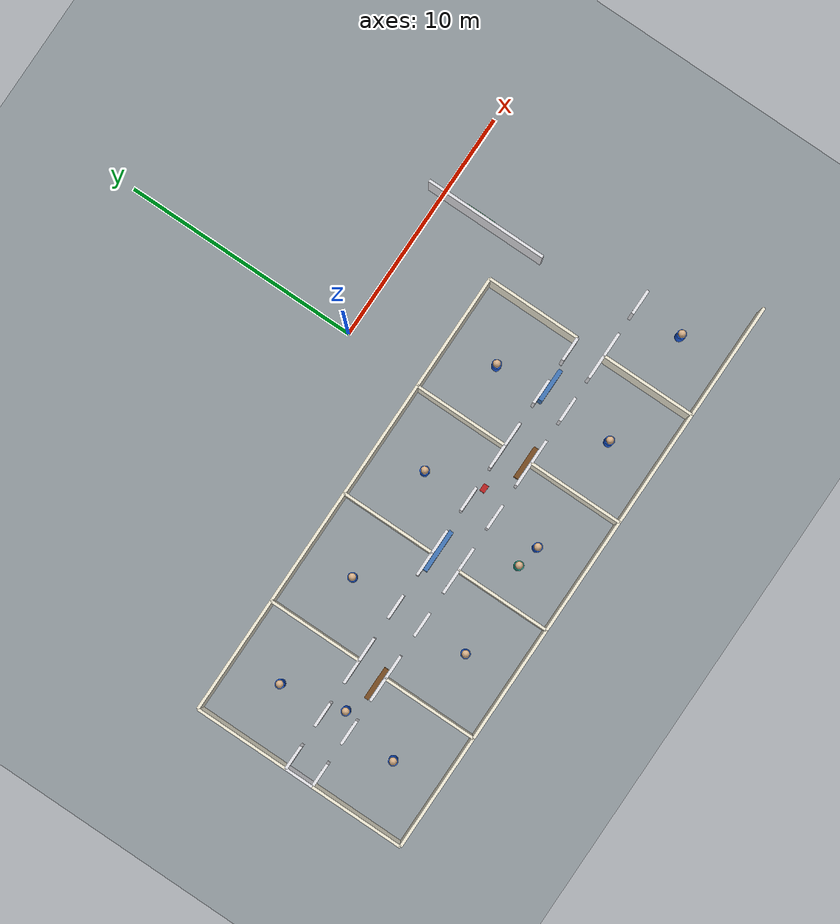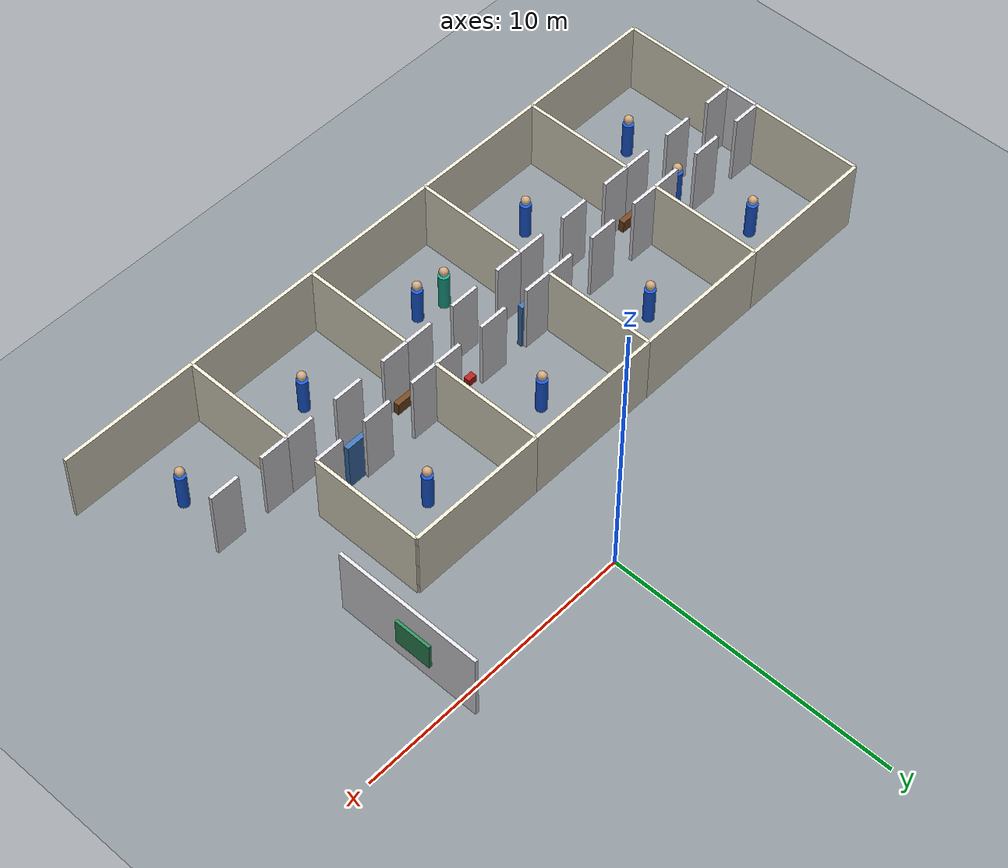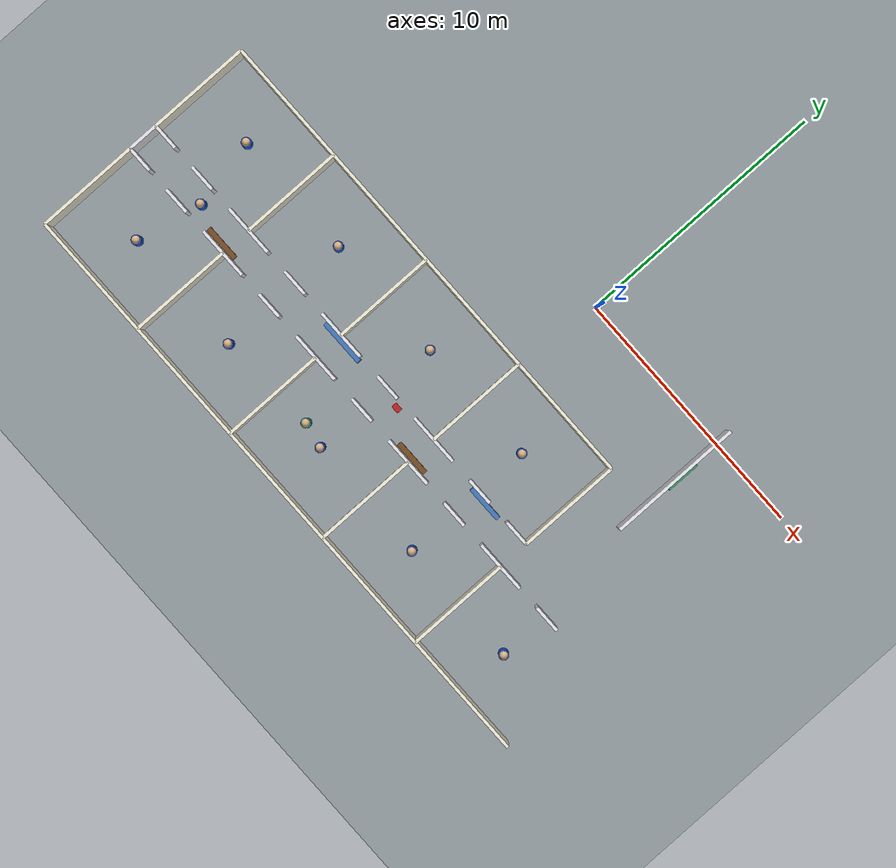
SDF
<sdf version="1.9">
 <world name="school_arena">
  <model name="ground">
   <static>true</static>
   <link name="link">
    <collision name="collision">
     <geometry><plane><normal>0 0 1</normal><size>80 80</size></plane></geometry>
    </collision>
    <visual name="visual">
     <geometry><plane><normal>0 0 1</normal><size>80 80</size></plane></geometry>
     <material><ambient>0.55 0.58 0.60 1</ambient><diffuse>0.55 0.58 0.60 1</diffuse></material>
    </visual>
   </link>
  </model>
  <model name="classroom_01_south">
   <static>true</static>
   <pose>-12.5500 -12.6000 1.3000 0 0 0</pose>
   <link name="link">
    <collision name="collision"><geometry><box><size>4.9000 0.1200 2.6000</size></box></geometry></collision>
    <visual name="visual">
     <geometry><box><size>4.9000 0.1200 2.6000</size></box></geometry>
     <material><ambient>0.92 0.90 0.82 1</ambient><diffuse>0.92 0.90 0.82 1</diffuse></material>
    </visual>
   </link>
  </model>
  <model name="classroom_01_west">
   <static>true</static>
   <pose>-15.0000 -10.6000 1.3000 0 0 0</pose>
   <link name="link">
    <collision name="collision"><geometry><box><size>0.1200 4.0000 2.6000</size></box></geometry></collision>
    <visual name="visual">
     <geometry><box><size>0.1200 4.0000 2.6000</size></box></geometry>
     <material><ambient>0.92 0.90 0.82 1</ambient><diffuse>0.92 0.90 0.82 1</diffuse></material>
    </visual>
   </link>
  </model>
  <model name="classroom_01_east">
   <static>true</static>
   <pose>-10.1000 -10.6000 1.3000 0 0 0</pose>
   <link name="link">
    <collision name="collision"><geometry><box><size>0.1200 4.0000 2.6000</size></box></geometry></collision>
    <visual name="visual">
     <geometry><box><size>0.1200 4.0000 2.6000</size></box></geometry>
     <material><ambient>0.92 0.90 0.82 1</ambient><diffuse>0.92 0.90 0.82 1</diffuse></material>
    </visual>
   </link>
  </model>
  <model name="classroom_01_front_0">
   <static>true</static>
   <pose>-14.4900 -8.6000 1.3000 0 0 0</pose>
   <link name="link">
    <collision name="collision"><geometry><box><size>1.0200 0.1200 2.6000</size></box></geometry></collision>
    <visual name="visual">
     <geometry><box><size>1.0200 0.1200 2.6000</size></box></geometry>
     <material><ambient>0.88 0.88 0.90 1</ambient><diffuse>0.88 0.88 0.90 1</diffuse></material>
    </visual>
   </link>
  </model>
  <model name="classroom_01_front_1">
   <static>true</static>
   <pose>-12.5500 -8.6000 1.3000 0 0 0</pose>
   <link name="link">
    <collision name="collision"><geometry><box><size>1.0600 0.1200 2.6000</size></box></geometry></collision>
    <visual name="visual">
     <geometry><box><size>1.0600 0.1200 2.6000</size></box></geometry>
     <material><ambient>0.88 0.88 0.90 1</ambient><diffuse>0.88 0.88 0.90 1</diffuse></material>
    </visual>
   </link>
  </model>
  <model name="classroom_01_front_2">
   <static>true</static>
   <pose>-10.6100 -8.6000 1.3000 0 0 0</pose>
   <link name="link">
    <collision name="collision"><geometry><box><size>1.0200 0.1200 2.6000</size></box></geometry></collision>
    <visual name="visual">
     <geometry><box><size>1.0200 0.1200 2.6000</size></box></geometry>
     <material><ambient>0.88 0.88 0.90 1</ambient><diffuse>0.88 0.88 0.90 1</diffuse></material>
    </visual>
   </link>
  </model>
  <model name="classroom_02_south">
   <static>true</static>
   <pose>-7.6500 -12.6000 1.3000 0 0 0</pose>
   <link name="link">
    <collision name="collision"><geometry><box><size>4.9000 0.1200 2.6000</size></box></geometry></collision>
    <visual name="visual">
     <geometry><box><size>4.9000 0.1200 2.6000</size></box></geometry>
     <material><ambient>0.92 0.90 0.82 1</ambient><diffuse>0.92 0.90 0.82 1</diffuse></material>
    </visual>
   </link>
  </model>
  <model name="classroom_02_west">
   <static>true</static>
   <pose>-10.1000 -10.6000 1.3000 0 0 0</pose>
   <link name="link">
    <collision name="collision"><geometry><box><size>0.1200 4.0000 2.6000</size></box></geometry></collision>
    <visual name="visual">
     <geometry><box><size>0.1200 4.0000 2.6000</size></box></geometry>
     <material><ambient>0.92 0.90 0.82 1</ambient><diffuse>0.92 0.90 0.82 1</diffuse></material>
    </visual>
   </link>
  </model>
  <model name="classroom_02_east">
   <static>true</static>
   <pose>-5.2000 -10.6000 1.3000 0 0 0</pose>
   <link name="link">
    <collision name="collision"><geometry><box><size>0.1200 4.0000 2.6000</size></box></geometry></collision>
    <visual name="visual">
     <geometry><box><size>0.1200 4.0000 2.6000</size></box></geometry>
     <material><ambient>0.92 0.90 0.82 1</ambient><diffuse>0.92 0.90 0.82 1</diffuse></material>
    </visual>
   </link>
  </model>
  <model name="classroom_02_front_0">
   <static>true</static>
   <pose>-9.5900 -8.6000 1.3000 0 0 0</pose>
   <link name="link">
    <collision name="collision"><geometry><box><size>1.0200 0.1200 2.6000</size></box></geometry></collision>
    <visual name="visual">
     <geometry><box><size>1.0200 0.1200 2.6000</size></box></geometry>
     <material><ambient>0.88 0.88 0.90 1</ambient><diffuse>0.88 0.88 0.90 1</diffuse></material>
    </visual>
   </link>
  </model>
  <model name="classroom_02_front_1">
   <static>true</static>
   <pose>-7.6500 -8.6000 1.3000 0 0 0</pose>
   <link name="link">
    <collision name="collision"><geometry><box><size>1.0600 0.1200 2.6000</size></box></geometry></collision>
    <visual name="visual">
     <geometry><box><size>1.0600 0.1200 2.6000</size></box></geometry>
     <material><ambient>0.88 0.88 0.90 1</ambient><diffuse>0.88 0.88 0.90 1</diffuse></material>
    </visual>
   </link>
  </model>
  <model name="classroom_02_front_2">
   <static>true</static>
   <pose>-5.7100 -8.6000 1.3000 0 0 0</pose>
   <link name="link">
    <collision name="collision"><geometry><box><size>1.0200 0.1200 2.6000</size></box></geometry></collision>
    <visual name="visual">
     <geometry><box><size>1.0200 0.1200 2.6000</size></box></geometry>
     <material><ambient>0.88 0.88 0.90 1</ambient><diffuse>0.88 0.88 0.90 1</diffuse></material>
    </visual>
   </link>
  </model>
  <model name="classroom_03_south">
   <static>true</static>
   <pose>-2.7500 -12.6000 1.3000 0 0 0</pose>
   <link name="link">
    <collision name="collision"><geometry><box><size>4.9000 0.1200 2.6000</size></box></geometry></collision>
    <visual name="visual">
     <geometry><box><size>4.9000 0.1200 2.6000</size></box></geometry>
     <material><ambient>0.92 0.90 0.82 1</ambient><diffuse>0.92 0.90 0.82 1</diffuse></material>
    </visual>
   </link>
  </model>
  <model name="classroom_03_west">
   <static>true</static>
   <pose>-5.2000 -10.6000 1.3000 0 0 0</pose>
   <link name="link">
    <collision name="collision"><geometry><box><size>0.1200 4.0000 2.6000</size></box></geometry></collision>
    <visual name="visual">
     <geometry><box><size>0.1200 4.0000 2.6000</size></box></geometry>
     <material><ambient>0.92 0.90 0.82 1</ambient><diffuse>0.92 0.90 0.82 1</diffuse></material>
    </visual>
   </link>
  </model>
  <model name="classroom_03_east">
   <static>true</static>
   <pose>-0.3000 -10.6000 1.3000 0 0 0</pose>
   <link name="link">
    <collision name="collision"><geometry><box><size>0.1200 4.0000 2.6000</size></box></geometry></collision>
    <visual name="visual">
     <geometry><box><size>0.1200 4.0000 2.6000</size></box></geometry>
     <material><ambient>0.92 0.90 0.82 1</ambient><diffuse>0.92 0.90 0.82 1</diffuse></material>
    </visual>
   </link>
  </model>
  <model name="classroom_03_front_0">
   <static>true</static>
   <pose>-4.6900 -8.6000 1.3000 0 0 0</pose>
   <link name="link">
    <collision name="collision"><geometry><box><size>1.0200 0.1200 2.6000</size></box></geometry></collision>
    <visual name="visual">
     <geometry><box><size>1.0200 0.1200 2.6000</size></box></geometry>
     <material><ambient>0.88 0.88 0.90 1</ambient><diffuse>0.88 0.88 0.90 1</diffuse></material>
    </visual>
   </link>
  </model>
  <model name="classroom_03_front_1">
   <static>true</static>
   <pose>-2.7500 -8.6000 1.3000 0 0 0</pose>
   <link name="link">
    <collision name="collision"><geometry><box><size>1.0600 0.1200 2.6000</size></box></geometry></collision>
    <visual name="visual">
     <geometry><box><size>1.0600 0.1200 2.6000</size></box></geometry>
     <material><ambient>0.88 0.88 0.90 1</ambient><diffuse>0.88 0.88 0.90 1</diffuse></material>
    </visual>
   </link>
  </model>
  <model name="classroom_03_front_2">
   <static>true</static>
   <pose>-0.8100 -8.6000 1.3000 0 0 0</pose>
   <link name="link">
    <collision name="collision"><geometry><box><size>1.0200 0.1200 2.6000</size></box></geometry></collision>
    <visual name="visual">
     <geometry><box><size>1.0200 0.1200 2.6000</size></box></geometry>
     <material><ambient>0.88 0.88 0.90 1</ambient><diffuse>0.88 0.88 0.90 1</diffuse></material>
    </visual>
   </link>
  </model>
  <model name="classroom_04_south">
   <static>true</static>
   <pose>2.1500 -12.6000 1.3000 0 0 0</pose>
   <link name="link">
    <collision name="collision"><geometry><box><size>4.9000 0.1200 2.6000</size></box></geometry></collision>
    <visual name="visual">
     <geometry><box><size>4.9000 0.1200 2.6000</size></box></geometry>
     <material><ambient>0.92 0.90 0.82 1</ambient><diffuse>0.92 0.90 0.82 1</diffuse></material>
    </visual>
   </link>
  </model>
  <model name="classroom_04_west">
   <static>true</static>
   <pose>-0.3000 -10.6000 1.3000 0 0 0</pose>
   <link name="link">
    <collision name="collision"><geometry><box><size>0.1200 4.0000 2.6000</size></box></geometry></collision>
    <visual name="visual">
     <geometry><box><size>0.1200 4.0000 2.6000</size></box></geometry>
     <material><ambient>0.92 0.90 0.82 1</ambient><diffuse>0.92 0.90 0.82 1</diffuse></material>
    </visual>
   </link>
  </model>
  <model name="classroom_04_east">
   <static>true</static>
   <pose>4.6000 -10.6000 1.3000 0 0 0</pose>
   <link name="link">
    <collision name="collision"><geometry><box><size>0.1200 4.0000 2.6000</size></box></geometry></collision>
    <visual name="visual">
     <geometry><box><size>0.1200 4.0000 2.6000</size></box></geometry>
     <material><ambient>0.92 0.90 0.82 1</ambient><diffuse>0.92 0.90 0.82 1</diffuse></material>
    </visual>
   </link>
  </model>
  <model name="classroom_04_front_0">
   <static>true</static>
   <pose>0.2100 -8.6000 1.3000 0 0 0</pose>
   <link name="link">
    <collision name="collision"><geometry><box><size>1.0200 0.1200 2.6000</size></box></geometry></collision>
    <visual name="visual">
     <geometry><box><size>1.0200 0.1200 2.6000</size></box></geometry>
     <material><ambient>0.88 0.88 0.90 1</ambient><diffuse>0.88 0.88 0.90 1</diffuse></material>
    </visual>
   </link>
  </model>
  <model name="classroom_04_front_1">
   <static>true</static>
   <pose>2.1500 -8.6000 1.3000 0 0 0</pose>
   <link name="link">
    <collision name="collision"><geometry><box><size>1.0600 0.1200 2.6000</size></box></geometry></collision>
    <visual name="visual">
     <geometry><box><size>1.0600 0.1200 2.6000</size></box></geometry>
     <material><ambient>0.88 0.88 0.90 1</ambient><diffuse>0.88 0.88 0.90 1</diffuse></material>
    </visual>
   </link>
  </model>
  <model name="classroom_04_front_2">
   <static>true</static>
   <pose>4.0900 -8.6000 1.3000 0 0 0</pose>
   <link name="link">
    <collision name="collision"><geometry><box><size>1.0200 0.1200 2.6000</size></box></geometry></collision>
    <visual name="visual">
     <geometry><box><size>1.0200 0.1200 2.6000</size></box></geometry>
     <material><ambient>0.88 0.88 0.90 1</ambient><diffuse>0.88 0.88 0.90 1</diffuse></material>
    </visual>
   </link>
  </model>
  <model name="classroom_05_south">
   <static>true</static>
   <pose>7.0500 -12.6000 1.3000 0 0 0</pose>
   <link name="link">
    <collision name="collision"><geometry><box><size>4.9000 0.1200 2.6000</size></box></geometry></collision>
    <visual name="visual">
     <geometry><box><size>4.9000 0.1200 2.6000</size></box></geometry>
     <material><ambient>0.92 0.90 0.82 1</ambient><diffuse>0.92 0.90 0.82 1</diffuse></material>
    </visual>
   </link>
  </model>
  <model name="classroom_05_west">
   <static>true</static>
   <pose>4.6000 -10.6000 1.3000 0 0 0</pose>
   <link name="link">
    <collision name="collision"><geometry><box><size>0.1200 4.0000 2.6000</size></box></geometry></collision>
    <visual name="visual">
     <geometry><box><size>0.1200 4.0000 2.6000</size></box></geometry>
     <material><ambient>0.92 0.90 0.82 1</ambient><diffuse>0.92 0.90 0.82 1</diffuse></material>
    </visual>
   </link>
  </model>
  <model name="classroom_05_front_0">
   <static>true</static>
   <pose>5.1100 -8.6000 1.3000 0 0 0</pose>
   <link name="link">
    <collision name="collision"><geometry><box><size>1.0200 0.1200 2.6000</size></box></geometry></collision>
    <visual name="visual">
     <geometry><box><size>1.0200 0.1200 2.6000</size></box></geometry>
     <material><ambient>0.88 0.88 0.90 1</ambient><diffuse>0.88 0.88 0.90 1</diffuse></material>
    </visual>
   </link>
  </model>
  <model name="classroom_05_front_1">
   <static>true</static>
   <pose>7.0500 -8.6000 1.3000 0 0 0</pose>
   <link name="link">
    <collision name="collision"><geometry><box><size>1.0600 0.1200 2.6000</size></box></geometry></collision>
    <visual name="visual">
     <geometry><box><size>1.0600 0.1200 2.6000</size></box></geometry>
     <material><ambient>0.88 0.88 0.90 1</ambient><diffuse>0.88 0.88 0.90 1</diffuse></material>
    </visual>
   </link>
  </model>
  <model name="classroom_07_north">
   <static>true</static>
   <pose>-12.5500 -3.4000 1.3000 0 0 0</pose>
   <link name="link">
    <collision name="collision"><geometry><box><size>4.9000 0.1200 2.6000</size></box></geometry></collision>
    <visual name="visual">
     <geometry><box><size>4.9000 0.1200 2.6000</size></box></geometry>
     <material><ambient>0.92 0.90 0.82 1</ambient><diffuse>0.92 0.90 0.82 1</diffuse></material>
    </visual>
   </link>
  </model>
  <model name="classroom_07_west">
   <static>true</static>
   <pose>-15.0000 -5.4000 1.3000 0 0 0</pose>
   <link name="link">
    <collision name="collision"><geometry><box><size>0.1200 4.0000 2.6000</size></box></geometry></collision>
    <visual name="visual">
     <geometry><box><size>0.1200 4.0000 2.6000</size></box></geometry>
     <material><ambient>0.92 0.90 0.82 1</ambient><diffuse>0.92 0.90 0.82 1</diffuse></material>
    </visual>
   </link>
  </model>
  <model name="classroom_07_east">
   <static>true</static>
   <pose>-10.1000 -5.4000 1.3000 0 0 0</pose>
   <link name="link">
    <collision name="collision"><geometry><box><size>0.1200 4.0000 2.6000</size></box></geometry></collision>
    <visual name="visual">
     <geometry><box><size>0.1200 4.0000 2.6000</size></box></geometry>
     <material><ambient>0.92 0.90 0.82 1</ambient><diffuse>0.92 0.90 0.82 1</diffuse></material>
    </visual>
   </link>
  </model>
  <model name="classroom_07_front_0">
   <static>true</static>
   <pose>-14.4900 -7.4000 1.3000 0 0 0</pose>
   <link name="link">
    <collision name="collision"><geometry><box><size>1.0200 0.1200 2.6000</size></box></geometry></collision>
    <visual name="visual">
     <geometry><box><size>1.0200 0.1200 2.6000</size></box></geometry>
     <material><ambient>0.88 0.88 0.90 1</ambient><diffuse>0.88 0.88 0.90 1</diffuse></material>
    </visual>
   </link>
  </model>
  <model name="classroom_07_front_1">
   <static>true</static>
   <pose>-12.5500 -7.4000 1.3000 0 0 0</pose>
   <link name="link">
    <collision name="collision"><geometry><box><size>1.0600 0.1200 2.6000</size></box></geometry></collision>
    <visual name="visual">
     <geometry><box><size>1.0600 0.1200 2.6000</size></box></geometry>
     <material><ambient>0.88 0.88 0.90 1</ambient><diffuse>0.88 0.88 0.90 1</diffuse></material>
    </visual>
   </link>
  </model>
  <model name="classroom_07_front_2">
   <static>true</static>
   <pose>-10.6100 -7.4000 1.3000 0 0 0</pose>
   <link name="link">
    <collision name="collision"><geometry><box><size>1.0200 0.1200 2.6000</size></box></geometry></collision>
    <visual name="visual">
     <geometry><box><size>1.0200 0.1200 2.6000</size></box></geometry>
     <material><ambient>0.88 0.88 0.90 1</ambient><diffuse>0.88 0.88 0.90 1</diffuse></material>
    </visual>
   </link>
  </model>
  <model name="classroom_08_north">
   <static>true</static>
   <pose>-7.6500 -3.4000 1.3000 0 0 0</pose>
   <link name="link">
    <collision name="collision"><geometry><box><size>4.9000 0.1200 2.6000</size></box></geometry></collision>
    <visual name="visual">
     <geometry><box><size>4.9000 0.1200 2.6000</size></box></geometry>
     <material><ambient>0.92 0.90 0.82 1</ambient><diffuse>0.92 0.90 0.82 1</diffuse></material>
    </visual>
   </link>
  </model>
  <model name="classroom_08_west">
   <static>true</static>
   <pose>-10.1000 -5.4000 1.3000 0 0 0</pose>
   <link name="link">
    <collision name="collision"><geometry><box><size>0.1200 4.0000 2.6000</size></box></geometry></collision>
    <visual name="visual">
     <geometry><box><size>0.1200 4.0000 2.6000</size></box></geometry>
     <material><ambient>0.92 0.90 0.82 1</ambient><diffuse>0.92 0.90 0.82 1</diffuse></material>
    </visual>
   </link>
  </model>
  <model name="classroom_08_east">
   <static>true</static>
   <pose>-5.2000 -5.4000 1.3000 0 0 0</pose>
   <link name="link">
    <collision name="collision"><geometry><box><size>0.1200 4.0000 2.6000</size></box></geometry></collision>
    <visual name="visual">
     <geometry><box><size>0.1200 4.0000 2.6000</size></box></geometry>
     <material><ambient>0.92 0.90 0.82 1</ambient><diffuse>0.92 0.90 0.82 1</diffuse></material>
    </visual>
   </link>
  </model>
  <model name="classroom_08_front_0">
   <static>true</static>
   <pose>-9.5900 -7.4000 1.3000 0 0 0</pose>
   <link name="link">
    <collision name="collision"><geometry><box><size>1.0200 0.1200 2.6000</size></box></geometry></collision>
    <visual name="visual">
     <geometry><box><size>1.0200 0.1200 2.6000</size></box></geometry>
     <material><ambient>0.88 0.88 0.90 1</ambient><diffuse>0.88 0.88 0.90 1</diffuse></material>
    </visual>
   </link>
  </model>
  <model name="classroom_08_front_1">
   <static>true</static>
   <pose>-7.6500 -7.4000 1.3000 0 0 0</pose>
   <link name="link">
    <collision name="collision"><geometry><box><size>1.0600 0.1200 2.6000</size></box></geometry></collision>
    <visual name="visual">
     <geometry><box><size>1.0600 0.1200 2.6000</size></box></geometry>
     <material><ambient>0.88 0.88 0.90 1</ambient><diffuse>0.88 0.88 0.90 1</diffuse></material>
    </visual>
   </link>
  </model>
  <model name="classroom_08_front_2">
   <static>true</static>
   <pose>-5.7100 -7.4000 1.3000 0 0 0</pose>
   <link name="link">
    <collision name="collision"><geometry><box><size>1.0200 0.1200 2.6000</size></box></geometry></collision>
    <visual name="visual">
     <geometry><box><size>1.0200 0.1200 2.6000</size></box></geometry>
     <material><ambient>0.88 0.88 0.90 1</ambient><diffuse>0.88 0.88 0.90 1</diffuse></material>
    </visual>
   </link>
  </model>
  <model name="classroom_09_north">
   <static>true</static>
   <pose>-2.7500 -3.4000 1.3000 0 0 0</pose>
   <link name="link">
    <collision name="collision"><geometry><box><size>4.9000 0.1200 2.6000</size></box></geometry></collision>
    <visual name="visual">
     <geometry><box><size>4.9000 0.1200 2.6000</size></box></geometry>
     <material><ambient>0.92 0.90 0.82 1</ambient><diffuse>0.92 0.90 0.82 1</diffuse></material>
    </visual>
   </link>
  </model>
  <model name="classroom_09_west">
   <static>true</static>
   <pose>-5.2000 -5.4000 1.3000 0 0 0</pose>
   <link name="link">
    <collision name="collision"><geometry><box><size>0.1200 4.0000 2.6000</size></box></geometry></collision>
    <visual name="visual">
     <geometry><box><size>0.1200 4.0000 2.6000</size></box></geometry>
     <material><ambient>0.92 0.90 0.82 1</ambient><diffuse>0.92 0.90 0.82 1</diffuse></material>
    </visual>
   </link>
  </model>
  <model name="classroom_09_east">
   <static>true</static>
   <pose>-0.3000 -5.4000 1.3000 0 0 0</pose>
   <link name="link">
    <collision name="collision"><geometry><box><size>0.1200 4.0000 2.6000</size></box></geometry></collision>
    <visual name="visual">
     <geometry><box><size>0.1200 4.0000 2.6000</size></box></geometry>
     <material><ambient>0.92 0.90 0.82 1</ambient><diffuse>0.92 0.90 0.82 1</diffuse></material>
    </visual>
   </link>
  </model>
  <model name="classroom_09_front_0">
   <static>true</static>
   <pose>-4.6900 -7.4000 1.3000 0 0 0</pose>
   <link name="link">
    <collision name="collision"><geometry><box><size>1.0200 0.1200 2.6000</size></box></geometry></collision>
    <visual name="visual">
     <geometry><box><size>1.0200 0.1200 2.6000</size></box></geometry>
     <material><ambient>0.88 0.88 0.90 1</ambient><diffuse>0.88 0.88 0.90 1</diffuse></material>
    </visual>
   </link>
  </model>
  <model name="classroom_09_front_1">
   <static>true</static>
   <pose>-2.7500 -7.4000 1.3000 0 0 0</pose>
   <link name="link">
    <collision name="collision"><geometry><box><size>1.0600 0.1200 2.6000</size></box></geometry></collision>
    <visual name="visual">
     <geometry><box><size>1.0600 0.1200 2.6000</size></box></geometry>
     <material><ambient>0.88 0.88 0.90 1</ambient><diffuse>0.88 0.88 0.90 1</diffuse></material>
    </visual>
   </link>
  </model>
  <model name="classroom_09_front_2">
   <static>true</static>
   <pose>-0.8100 -7.4000 1.3000 0 0 0</pose>
   <link name="link">
    <collision name="collision"><geometry><box><size>1.0200 0.1200 2.6000</size></box></geometry></collision>
    <visual name="visual">
     <geometry><box><size>1.0200 0.1200 2.6000</size></box></geometry>
     <material><ambient>0.88 0.88 0.90 1</ambient><diffuse>0.88 0.88 0.90 1</diffuse></material>
    </visual>
   </link>
  </model>
  <model name="classroom_10_north">
   <static>true</static>
   <pose>2.1500 -3.4000 1.3000 0 0 0</pose>
   <link name="link">
    <collision name="collision"><geometry><box><size>4.9000 0.1200 2.6000</size></box></geometry></collision>
    <visual name="visual">
     <geometry><box><size>4.9000 0.1200 2.6000</size></box></geometry>
     <material><ambient>0.92 0.90 0.82 1</ambient><diffuse>0.92 0.90 0.82 1</diffuse></material>
    </visual>
   </link>
  </model>
  <model name="classroom_10_west">
   <static>true</static>
   <pose>-0.3000 -5.4000 1.3000 0 0 0</pose>
   <link name="link">
    <collision name="collision"><geometry><box><size>0.1200 4.0000 2.6000</size></box></geometry></collision>
    <visual name="visual">
     <geometry><box><size>0.1200 4.0000 2.6000</size></box></geometry>
     <material><ambient>0.92 0.90 0.82 1</ambient><diffuse>0.92 0.90 0.82 1</diffuse></material>
    </visual>
   </link>
  </model>
  <model name="classroom_10_east">
   <static>true</static>
   <pose>4.6000 -5.4000 1.3000 0 0 0</pose>
   <link name="link">
    <collision name="collision"><geometry><box><size>0.1200 4.0000 2.6000</size></box></geometry></collision>
    <visual name="visual">
     <geometry><box><size>0.1200 4.0000 2.6000</size></box></geometry>
     <material><ambient>0.92 0.90 0.82 1</ambient><diffuse>0.92 0.90 0.82 1</diffuse></material>
    </visual>
   </link>
  </model>
  <model name="classroom_10_front_0">
   <static>true</static>
   <pose>0.2100 -7.4000 1.3000 0 0 0</pose>
   <link name="link">
    <collision name="collision"><geometry><box><size>1.0200 0.1200 2.6000</size></box></geometry></collision>
    <visual name="visual">
     <geometry><box><size>1.0200 0.1200 2.6000</size></box></geometry>
     <material><ambient>0.88 0.88 0.90 1</ambient><diffuse>0.88 0.88 0.90 1</diffuse></material>
    </visual>
   </link>
  </model>
  <model name="classroom_10_front_1">
   <static>true</static>
   <pose>2.1500 -7.4000 1.3000 0 0 0</pose>
   <link name="link">
    <collision name="collision"><geometry><box><size>1.0600 0.1200 2.6000</size></box></geometry></collision>
    <visual name="visual">
     <geometry><box><size>1.0600 0.1200 2.6000</size></box></geometry>
     <material><ambient>0.88 0.88 0.90 1</ambient><diffuse>0.88 0.88 0.90 1</diffuse></material>
    </visual>
   </link>
  </model>
  <model name="classroom_10_front_2">
   <static>true</static>
   <pose>4.0900 -7.4000 1.3000 0 0 0</pose>
   <link name="link">
    <collision name="collision"><geometry><box><size>1.0200 0.1200 2.6000</size></box></geometry></collision>
    <visual name="visual">
     <geometry><box><size>1.0200 0.1200 2.6000</size></box></geometry>
     <material><ambient>0.88 0.88 0.90 1</ambient><diffuse>0.88 0.88 0.90 1</diffuse></material>
    </visual>
   </link>
  </model>
  <model name="corridor_A_west_end">
   <static>true</static>
   <pose>-15.0000 -8.0000 1.3000 0 0 0</pose>
   <link name="link">
    <collision name="collision"><geometry><box><size>0.1200 1.2000 2.6000</size></box></geometry></collision>
    <visual name="visual">
     <geometry><box><size>0.1200 1.2000 2.6000</size></box></geometry>
     <material><ambient>0.88 0.88 0.90 1</ambient><diffuse>0.88 0.88 0.90 1</diffuse></material>
    </visual>
   </link>
  </model>
  <model name="corridor_D_outer_west">
   <static>true</static>
   <pose>6.4000 -2.0000 1.3000 0 0 0</pose>
   <link name="link">
    <collision name="collision"><geometry><box><size>0.1200 5.2000 2.6000</size></box></geometry></collision>
    <visual name="visual">
     <geometry><box><size>0.1200 5.2000 2.6000</size></box></geometry>
     <material><ambient>0.88 0.88 0.90 1</ambient><diffuse>0.88 0.88 0.90 1</diffuse></material>
    </visual>
   </link>
  </model>
  <model name="bench_01">
   <static>true</static>
   <pose>-10.5000 -8.4300 0.2250 0.0000 0.0000 0.0000</pose>
   <link name="link">
    <collision name="collision"><geometry><box><size>1.4000 0.2000 0.4500</size></box></geometry></collision>
    <visual name="visual">
     <geometry><box><size>1.4000 0.2000 0.4500</size></box></geometry>
     <material><ambient>0.45 0.28 0.12 1</ambient><diffuse>0.45 0.28 0.12 1</diffuse></material>
    </visual>
   </link>
  </model>
  <model name="bench_02">
   <static>true</static>
   <pose>-0.3000 -8.4300 0.2250 0.0000 0.0000 0.0000</pose>
   <link name="link">
    <collision name="collision"><geometry><box><size>1.4000 0.2000 0.4500</size></box></geometry></collision>
    <visual name="visual">
     <geometry><box><size>1.4000 0.2000 0.4500</size></box></geometry>
     <material><ambient>0.45 0.28 0.12 1</ambient><diffuse>0.45 0.28 0.12 1</diffuse></material>
    </visual>
   </link>
  </model>
  <model name="locker_01">
   <static>true</static>
   <pose>-5.0000 -7.5500 0.9000 0 0 0</pose>
   <link name="link">
    <collision name="collision"><geometry><box><size>1.8000 0.1800 1.8000</size></box></geometry></collision>
    <visual name="visual">
     <geometry><box><size>1.8000 0.1800 1.8000</size></box></geometry>
     <material><ambient>0.25 0.45 0.70 1</ambient><diffuse>0.25 0.45 0.70 1</diffuse></material>
    </visual>
   </link>
  </model>
  <model name="locker_02">
   <static>true</static>
   <pose>2.6000 -7.5500 0.9000 0 0 0</pose>
   <link name="link">
    <collision name="collision"><geometry><box><size>1.4000 0.1800 1.8000</size></box></geometry></collision>
    <visual name="visual">
     <geometry><box><size>1.4000 0.1800 1.8000</size></box></geometry>
     <material><ambient>0.25 0.45 0.70 1</ambient><diffuse>0.25 0.45 0.70 1</diffuse></material>
    </visual>
   </link>
  </model>
  <model name="backpack_01">
   <static>true</static>
   <pose>-2.0000 -7.6500 0.1400 0.0000 0.0000 0.0000</pose>
   <link name="link">
    <collision name="collision"><geometry><box><size>0.3200 0.2200 0.2800</size></box></geometry></collision>
    <visual name="visual">
     <geometry><box><size>0.3200 0.2200 0.2800</size></box></geometry>
     <material><ambient>0.70 0.12 0.12 1</ambient><diffuse>0.70 0.12 0.12 1</diffuse></material>
    </visual>
   </link>
  </model>
  <model name="notice_board">
   <static>true</static>
   <pose>6.5200 -1.7000 1.2000 0 0 0</pose>
   <link name="link">
    <collision name="collision"><geometry><box><size>0.1000 1.3000 1.0000</size></box></geometry></collision>
    <visual name="visual">
     <geometry><box><size>0.1000 1.3000 1.0000</size></box></geometry>
     <material><ambient>0.18 0.55 0.35 1</ambient><diffuse>0.18 0.55 0.35 1</diffuse></material>
    </visual>
   </link>
  </model>
  <model name="student_head_on_A">
   <static>false</static>
   <pose>-12.000 -8.050 0.000 0 0 0</pose>
   <link name="base_link">
    <kinematic>true</kinematic>
    <gravity>false</gravity>
    <inertial>
     <mass>8.0</mass>
     <inertia><ixx>12.0</ixx><ixy>0</ixy><ixz>0</ixz><iyy>12.0</iyy><iyz>0</iyz><izz>0.45</izz></inertia>
    </inertial>
    <visual name="body">
     <geometry><cylinder><radius>0.19</radius><length>1.35</length></cylinder></geometry>
     <pose>0 0 0.675 0 0 0</pose>
     <material><ambient>0.10 0.35 0.85 1</ambient><diffuse>0.10 0.35 0.85 1</diffuse></material>
    </visual>
    <visual name="head">
     <pose>0 0 1.510 0 0 0</pose>
     <geometry><sphere><radius>0.16</radius></sphere></geometry>
     <material><ambient>0.82 0.67 0.52 1</ambient><diffuse>0.82 0.67 0.52 1</diffuse></material>
    </visual>
   </link>
  </model>
  <model name="student_door_exit">
   <static>false</static>
   <pose>-3.730 -10.400 0.000 0 0 1.5708</pose>
   <link name="base_link">
    <kinematic>true</kinematic>
    <gravity>false</gravity>
    <inertial>
     <mass>8.0</mass>
     <inertia><ixx>12.0</ixx><ixy>0</ixy><ixz>0</ixz><iyy>12.0</iyy><iyz>0</iyz><izz>0.45</izz></inertia>
    </inertial>
    <visual name="body">
     <geometry><cylinder><radius>0.19</radius><length>1.35</length></cylinder></geometry>
     <pose>0 0 0.675 0 0 0</pose>
     <material><ambient>0.10 0.65 0.55 1</ambient><diffuse>0.10 0.65 0.55 1</diffuse></material>
    </visual>
    <visual name="head">
     <pose>0 0 1.510 0 0 0</pose>
     <geometry><sphere><radius>0.16</radius></sphere></geometry>
     <material><ambient>0.82 0.67 0.52 1</ambient><diffuse>0.82 0.67 0.52 1</diffuse></material>
    </visual>
   </link>
  </model>
  <model name="background_agent_1">
   <static>false</static>
   <pose>2.15000 -10.60000 0.000 0 0 2.093735</pose>
   <link name="base_link">
    <kinematic>true</kinematic>
    <gravity>false</gravity>
    <inertial>
     <mass>8.0</mass>
     <inertia><ixx>12.0</ixx><ixy>0</ixy><ixz>0</ixz><iyy>12.0</iyy><iyz>0</iyz><izz>0.45</izz></inertia>
    </inertial>
    <visual name="body">
     <geometry><cylinder><radius>0.19</radius><length>1.35</length></cylinder></geometry>
     <pose>0 0 0.675 0 0 0</pose>
     <material><ambient>0.10 0.35 0.85 1</ambient><diffuse>0.10 0.35 0.85 1</diffuse></material>
    </visual>
    <visual name="head">
     <pose>0 0 1.510 0 0 0</pose>
     <geometry><sphere><radius>0.16</radius></sphere></geometry>
     <material><ambient>0.82 0.67 0.52 1</ambient><diffuse>0.82 0.67 0.52 1</diffuse></material>
    </visual>
   </link>
  </model>
  <model name="background_agent_2">
   <static>false</static>
   <pose>-7.65000 -5.40000 0.000 0 0 -2.093735</pose>
   <link name="base_link">
    <kinematic>true</kinematic>
    <gravity>false</gravity>
    <inertial>
     <mass>8.0</mass>
     <inertia><ixx>12.0</ixx><ixy>0</ixy><ixz>0</ixz><iyy>12.0</iyy><iyz>0</iyz><izz>0.45</izz></inertia>
    </inertial>
    <visual name="body">
     <geometry><cylinder><radius>0.19</radius><length>1.35</length></cylinder></geometry>
     <pose>0 0 0.675 0 0 0</pose>
     <material><ambient>0.10 0.35 0.85 1</ambient><diffuse>0.10 0.35 0.85 1</diffuse></material>
    </visual>
    <visual name="head">
     <pose>0 0 1.510 0 0 0</pose>
     <geometry><sphere><radius>0.16</radius></sphere></geometry>
     <material><ambient>0.82 0.67 0.52 1</ambient><diffuse>0.82 0.67 0.52 1</diffuse></material>
    </visual>
   </link>
  </model>
  <model name="background_agent_3">
   <static>false</static>
   <pose>-2.75000 -10.60000 0.000 0 0 2.093735</pose>
   <link name="base_link">
    <kinematic>true</kinematic>
    <gravity>false</gravity>
    <inertial>
     <mass>8.0</mass>
     <inertia><ixx>12.0</ixx><ixy>0</ixy><ixz>0</ixz><iyy>12.0</iyy><iyz>0</iyz><izz>0.45</izz></inertia>
    </inertial>
    <visual name="body">
     <geometry><cylinder><radius>0.19</radius><length>1.35</length></cylinder></geometry>
     <pose>0 0 0.675 0 0 0</pose>
     <material><ambient>0.10 0.35 0.85 1</ambient><diffuse>0.10 0.35 0.85 1</diffuse></material>
    </visual>
    <visual name="head">
     <pose>0 0 1.510 0 0 0</pose>
     <geometry><sphere><radius>0.16</radius></sphere></geometry>
     <material><ambient>0.82 0.67 0.52 1</ambient><diffuse>0.82 0.67 0.52 1</diffuse></material>
    </visual>
   </link>
  </model>
  <model name="background_agent_4">
   <static>false</static>
   <pose>-12.55000 -10.60000 0.000 0 0 2.093735</pose>
   <link name="base_link">
    <kinematic>true</kinematic>
    <gravity>false</gravity>
    <inertial>
     <mass>8.0</mass>
     <inertia><ixx>12.0</ixx><ixy>0</ixy><ixz>0</ixz><iyy>12.0</iyy><iyz>0</iyz><izz>0.45</izz></inertia>
    </inertial>
    <visual name="body">
     <geometry><cylinder><radius>0.19</radius><length>1.35</length></cylinder></geometry>
     <pose>0 0 0.675 0 0 0</pose>
     <material><ambient>0.10 0.35 0.85 1</ambient><diffuse>0.10 0.35 0.85 1</diffuse></material>
    </visual>
    <visual name="head">
     <pose>0 0 1.510 0 0 0</pose>
     <geometry><sphere><radius>0.16</radius></sphere></geometry>
     <material><ambient>0.82 0.67 0.52 1</ambient><diffuse>0.82 0.67 0.52 1</diffuse></material>
    </visual>
   </link>
  </model>
  <model name="background_agent_5">
   <static>false</static>
   <pose>2.15000 -5.40000 0.000 0 0 -2.093735</pose>
   <link name="base_link">
    <kinematic>true</kinematic>
    <gravity>false</gravity>
    <inertial>
     <mass>8.0</mass>
     <inertia><ixx>12.0</ixx><ixy>0</ixy><ixz>0</ixz><iyy>12.0</iyy><iyz>0</iyz><izz>0.45</izz></inertia>
    </inertial>
    <visual name="body">
     <geometry><cylinder><radius>0.19</radius><length>1.35</length></cylinder></geometry>
     <pose>0 0 0.675 0 0 0</pose>
     <material><ambient>0.10 0.35 0.85 1</ambient><diffuse>0.10 0.35 0.85 1</diffuse></material>
    </visual>
    <visual name="head">
     <pose>0 0 1.510 0 0 0</pose>
     <geometry><sphere><radius>0.16</radius></sphere></geometry>
     <material><ambient>0.82 0.67 0.52 1</ambient><diffuse>0.82 0.67 0.52 1</diffuse></material>
    </visual>
   </link>
  </model>
  <model name="background_agent_6">
   <static>false</static>
   <pose>-7.65000 -10.60000 0.000 0 0 2.093735</pose>
   <link name="base_link">
    <kinematic>true</kinematic>
    <gravity>false</gravity>
    <inertial>
     <mass>8.0</mass>
     <inertia><ixx>12.0</ixx><ixy>0</ixy><ixz>0</ixz><iyy>12.0</iyy><iyz>0</iyz><izz>0.45</izz></inertia>
    </inertial>
    <visual name="body">
     <geometry><cylinder><radius>0.19</radius><length>1.35</length></cylinder></geometry>
     <pose>0 0 0.675 0 0 0</pose>
     <material><ambient>0.10 0.35 0.85 1</ambient><diffuse>0.10 0.35 0.85 1</diffuse></material>
    </visual>
    <visual name="head">
     <pose>0 0 1.510 0 0 0</pose>
     <geometry><sphere><radius>0.16</radius></sphere></geometry>
     <material><ambient>0.82 0.67 0.52 1</ambient><diffuse>0.82 0.67 0.52 1</diffuse></material>
    </visual>
   </link>
  </model>
  <model name="background_agent_7">
   <static>false</static>
   <pose>-2.75000 -5.40000 0.000 0 0 -2.093735</pose>
   <link name="base_link">
    <kinematic>true</kinematic>
    <gravity>false</gravity>
    <inertial>
     <mass>8.0</mass>
     <inertia><ixx>12.0</ixx><ixy>0</ixy><ixz>0</ixz><iyy>12.0</iyy><iyz>0</iyz><izz>0.45</izz></inertia>
    </inertial>
    <visual name="body">
     <geometry><cylinder><radius>0.19</radius><length>1.35</length></cylinder></geometry>
     <pose>0 0 0.675 0 0 0</pose>
     <material><ambient>0.10 0.35 0.85 1</ambient><diffuse>0.10 0.35 0.85 1</diffuse></material>
    </visual>
    <visual name="head">
     <pose>0 0 1.510 0 0 0</pose>
     <geometry><sphere><radius>0.16</radius></sphere></geometry>
     <material><ambient>0.82 0.67 0.52 1</ambient><diffuse>0.82 0.67 0.52 1</diffuse></material>
    </visual>
   </link>
  </model>
  <model name="background_agent_8">
   <static>false</static>
   <pose>7.05000 -10.60000 0.000 0 0 2.093735</pose>
   <link name="base_link">
    <kinematic>true</kinematic>
    <gravity>false</gravity>
    <inertial>
     <mass>8.0</mass>
     <inertia><ixx>12.0</ixx><ixy>0</ixy><ixz>0</ixz><iyy>12.0</iyy><iyz>0</iyz><izz>0.45</izz></inertia>
    </inertial>
    <visual name="body">
     <geometry><cylinder><radius>0.19</radius><length>1.35</length></cylinder></geometry>
     <pose>0 0 0.675 0 0 0</pose>
     <material><ambient>0.10 0.35 0.85 1</ambient><diffuse>0.10 0.35 0.85 1</diffuse></material>
    </visual>
    <visual name="head">
     <pose>0 0 1.510 0 0 0</pose>
     <geometry><sphere><radius>0.16</radius></sphere></geometry>
     <material><ambient>0.82 0.67 0.52 1</ambient><diffuse>0.82 0.67 0.52 1</diffuse></material>
    </visual>
   </link>
  </model>
  <model name="background_agent_11">
   <static>false</static>
   <pose>-12.55000 -5.40000 0.000 0 0 -2.093735</pose>
   <link name="base_link">
    <kinematic>true</kinematic>
    <gravity>false</gravity>
    <inertial>
     <mass>8.0</mass>
     <inertia><ixx>12.0</ixx><ixy>0</ixy><ixz>0</ixz><iyy>12.0</iyy><iyz>0</iyz><izz>0.45</izz></inertia>
    </inertial>
    <visual name="body">
     <geometry><cylinder><radius>0.19</radius><length>1.35</length></cylinder></geometry>
     <pose>0 0 0.675 0 0 0</pose>
     <material><ambient>0.10 0.35 0.85 1</ambient><diffuse>0.10 0.35 0.85 1</diffuse></material>
    </visual>
    <visual name="head">
     <pose>0 0 1.510 0 0 0</pose>
     <geometry><sphere><radius>0.16</radius></sphere></geometry>
     <material><ambient>0.82 0.67 0.52 1</ambient><diffuse>0.82 0.67 0.52 1</diffuse></material>
    </visual>
   </link>
  </model>
 </world>
</sdf>
